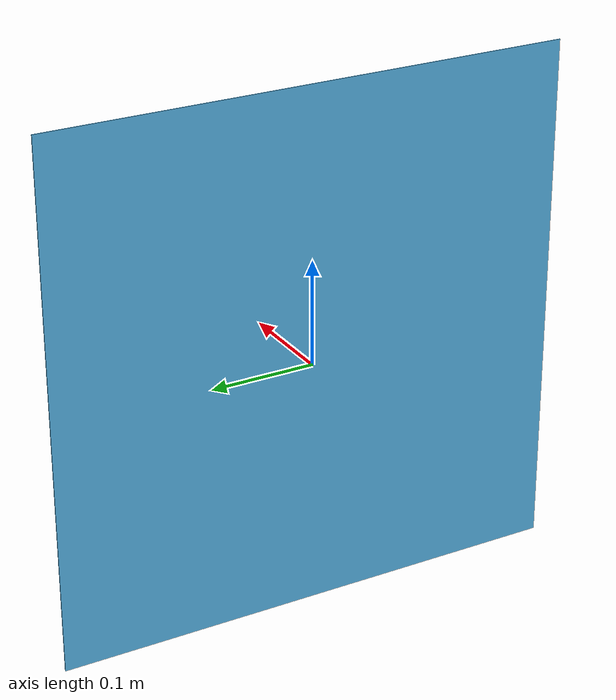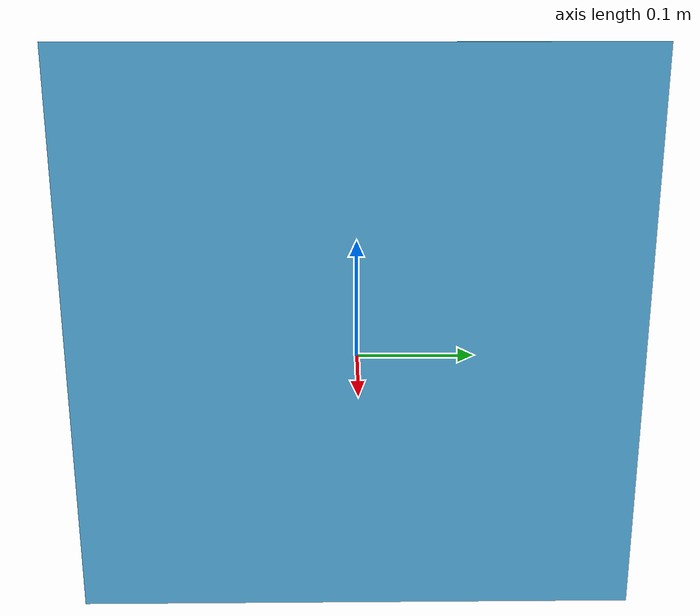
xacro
<?xml version="1.0" ?>
<robot name="AR_object" xmlns:xacro="http://ros.org/wiki/xacro">

  <link name="base_link"/>

  <joint name="base_joint" type="fixed">
    <parent link="base_link"/>
    <child link="AR_box_link"/>
    <origin xyz="0.0 0.0 0.010" rpy="0 0 0"/>
  </joint>

  <link name="AR_box_link">
    <inertial>
      <origin xyz="0 0 0" rpy="0 0 0"/>
      <mass value="1"/>
      <inertia ixx="2.2124416e-03" ixy="-1.2294101e-05" ixz="3.4938785e-05"
               iyy="2.1193702e-03" iyz="-5.0120904e-06"
               izz="2.0064271e-03" />
    </inertial>

    <visual>
      <origin xyz="0 0 0.0" rpy="0 0 0"/>
      <geometry>
        <mesh filename="package://follow_path_pkg/meshes/ARobject.dae"/>
      </geometry>
    </visual>

    <collision>
      <origin xyz="0 0 0" rpy="0 0 0"/>
      <geometry>
        <box size="0.5 0.5 0.5"/>
      </geometry>
    </collision>
  </link>

  <gazebo>
    <kp>100000.0</kp>
    <kd>100000.0</kd>
    <mu1>0.1</mu1>
    <mu2>0.1</mu2>
    <fdir1>1 0 0</fdir1>
  </gazebo>
</robot>
